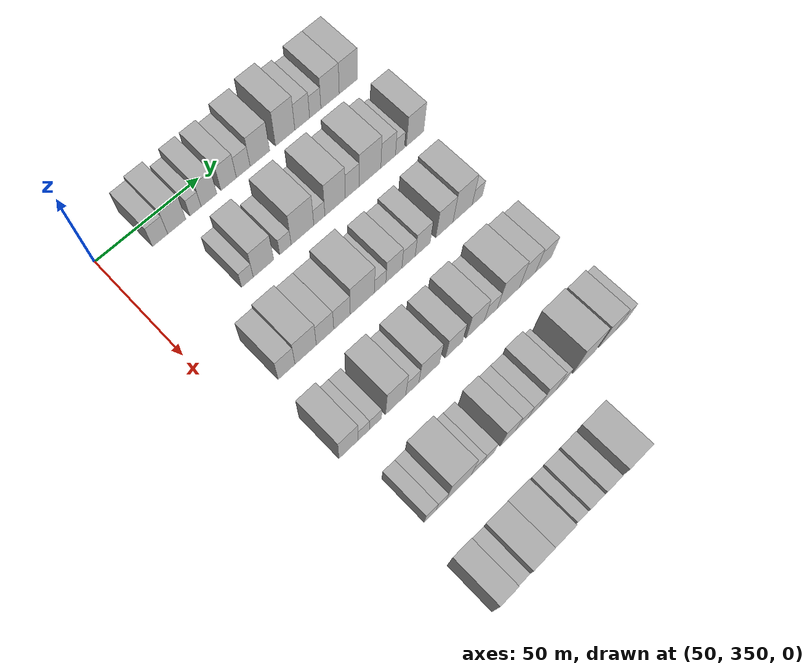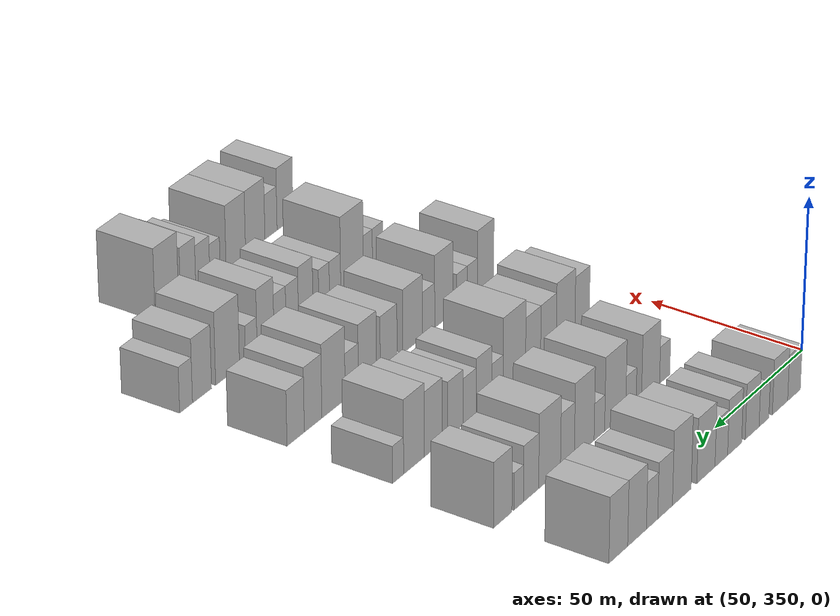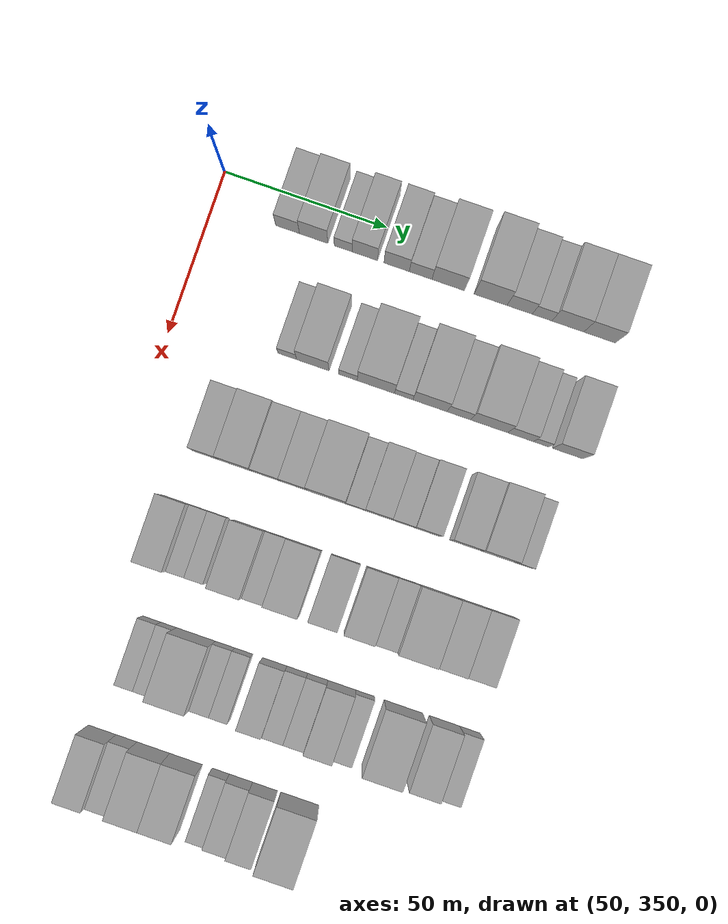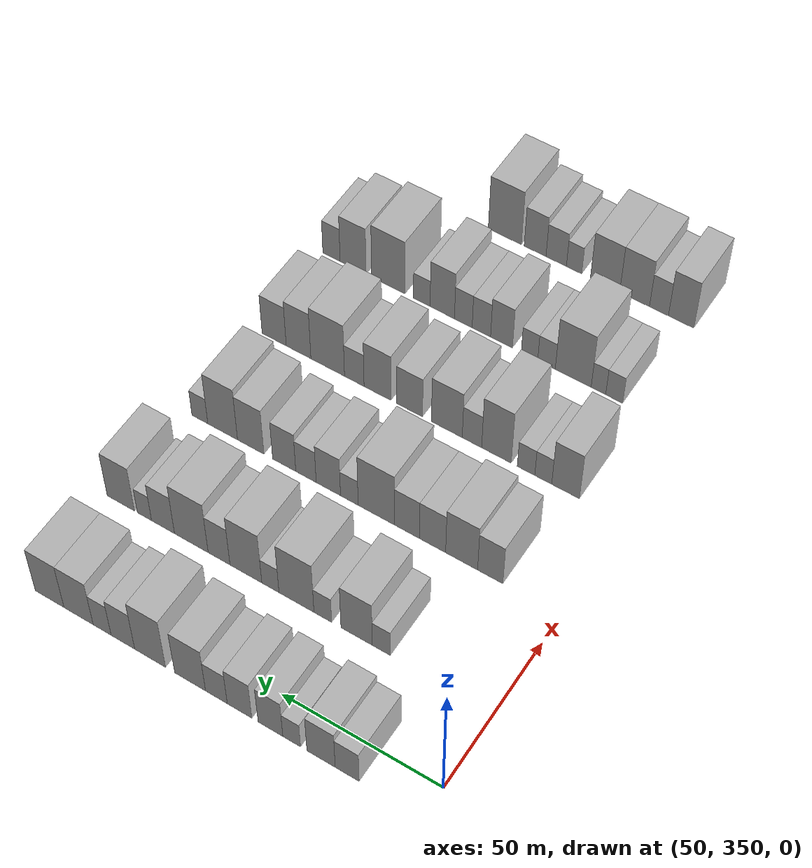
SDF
<sdf version="1.6">
 <world name="default">
  <model name="building_96">
   <static>1</static>
   <pose>50.0000 372.9082 0 0.000000 0.000000 0.000000</pose>
   <link name="link">
    <pose>0 0 7.50 0 0 0</pose>
    <collision name="collision"><geometry><box><size>20.0000 7.3380 15.0000</size></box></geometry></collision>
    <visual name="visual">
     <cast_shadows>0</cast_shadows>
     <geometry><box><size>20.0000 7.3380 15.0000</size></box></geometry>
     <material>
      <script>
       <uri>model://HANNAS_wall/materials/scripts</uri>
       <uri>model://HANNAS_wall/materials/textures</uri>
       <name>vrc/HANNAS_wall</name>
      </script>
     </material>
    </visual>
   </link>
  </model>
  <model name="building_97">
   <static>1</static>
   <pose>50.0000 380.9522 0 0.000000 0.000000 0.000000</pose>
   <link name="link">
    <pose>0 0 9.00 0 0 0</pose>
    <collision name="collision"><geometry><box><size>20.0000 8.7500 18.0000</size></box></geometry></collision>
    <visual name="visual">
     <cast_shadows>0</cast_shadows>
     <geometry><box><size>20.0000 8.7500 18.0000</size></box></geometry>
     <material>
      <script>
       <uri>model://HANNAS_wall/materials/scripts</uri>
       <uri>model://HANNAS_wall/materials/textures</uri>
       <name>vrc/HANNAS_wall</name>
      </script>
     </material>
    </visual>
   </link>
  </model>
  <model name="building_98">
   <static>1</static>
   <pose>50.0000 390.0911 0 0.000000 0.000000 0.000000</pose>
   <link name="link">
    <pose>0 0 6.00 0 0 0</pose>
    <collision name="collision"><geometry><box><size>20.0000 5.5277 12.0000</size></box></geometry></collision>
    <visual name="visual">
     <cast_shadows>0</cast_shadows>
     <geometry><box><size>20.0000 5.5277 12.0000</size></box></geometry>
     <material>
      <script>
       <uri>model://HANNAS_wall/materials/scripts</uri>
       <uri>model://HANNAS_wall/materials/textures</uri>
       <name>vrc/HANNAS_wall</name>
      </script>
     </material>
    </visual>
   </link>
  </model>
  <model name="building_99">
   <static>1</static>
   <pose>50.0000 396.7449 0 0.000000 0.000000 0.000000</pose>
   <link name="link">
    <pose>0 0 9.00 0 0 0</pose>
    <collision name="collision"><geometry><box><size>20.0000 7.7799 18.0000</size></box></geometry></collision>
    <visual name="visual">
     <cast_shadows>0</cast_shadows>
     <geometry><box><size>20.0000 7.7799 18.0000</size></box></geometry>
     <material>
      <script>
       <uri>model://HANNAS_wall/materials/scripts</uri>
       <uri>model://HANNAS_wall/materials/textures</uri>
       <name>vrc/HANNAS_wall</name>
      </script>
     </material>
    </visual>
   </link>
  </model>
  <model name="building_100">
   <static>1</static>
   <pose>50.0000 406.5369 0 0.000000 0.000000 0.000000</pose>
   <link name="link">
    <pose>0 0 9.00 0 0 0</pose>
    <collision name="collision"><geometry><box><size>20.0000 7.8041 18.0000</size></box></geometry></collision>
    <visual name="visual">
     <cast_shadows>0</cast_shadows>
     <geometry><box><size>20.0000 7.8041 18.0000</size></box></geometry>
     <material>
      <script>
       <uri>model://HANNAS_wall/materials/scripts</uri>
       <uri>model://HANNAS_wall/materials/textures</uri>
       <name>vrc/HANNAS_wall</name>
      </script>
     </material>
    </visual>
   </link>
  </model>
  <model name="building_101">
   <static>1</static>
   <pose>50.0000 413.9304 0 0.000000 0.000000 0.000000</pose>
   <link name="link">
    <pose>0 0 7.50 0 0 0</pose>
    <collision name="collision"><geometry><box><size>20.0000 6.9829 15.0000</size></box></geometry></collision>
    <visual name="visual">
     <cast_shadows>0</cast_shadows>
     <geometry><box><size>20.0000 6.9829 15.0000</size></box></geometry>
     <material>
      <script>
       <uri>model://HANNAS_wall/materials/scripts</uri>
       <uri>model://HANNAS_wall/materials/textures</uri>
       <name>vrc/HANNAS_wall</name>
      </script>
     </material>
    </visual>
   </link>
  </model>
  <model name="building_102">
   <static>1</static>
   <pose>50.0000 422.4146 0 0.000000 0.000000 0.000000</pose>
   <link name="link">
    <pose>0 0 10.50 0 0 0</pose>
    <collision name="collision"><geometry><box><size>20.0000 9.9854 21.0000</size></box></geometry></collision>
    <visual name="visual">
     <cast_shadows>0</cast_shadows>
     <geometry><box><size>20.0000 9.9854 21.0000</size></box></geometry>
     <material>
      <script>
       <uri>model://HANNAS_wall/materials/scripts</uri>
       <uri>model://HANNAS_wall/materials/textures</uri>
       <name>vrc/HANNAS_wall</name>
      </script>
     </material>
    </visual>
   </link>
  </model>
  <model name="building_103">
   <static>1</static>
   <pose>50.0000 435.4691 0 0.000000 0.000000 0.000000</pose>
   <link name="link">
    <pose>0 0 12.00 0 0 0</pose>
    <collision name="collision"><geometry><box><size>20.0000 10.1235 24.0000</size></box></geometry></collision>
    <visual name="visual">
     <cast_shadows>0</cast_shadows>
     <geometry><box><size>20.0000 10.1235 24.0000</size></box></geometry>
     <material>
      <script>
       <uri>model://HANNAS_wall/materials/scripts</uri>
       <uri>model://HANNAS_wall/materials/textures</uri>
       <name>vrc/HANNAS_wall</name>
      </script>
     </material>
    </visual>
   </link>
  </model>
  <model name="building_104">
   <static>1</static>
   <pose>50.0000 444.4349 0 0.000000 0.000000 0.000000</pose>
   <link name="link">
    <pose>0 0 9.00 0 0 0</pose>
    <collision name="collision"><geometry><box><size>20.0000 7.8082 18.0000</size></box></geometry></collision>
    <visual name="visual">
     <cast_shadows>0</cast_shadows>
     <geometry><box><size>20.0000 7.8082 18.0000</size></box></geometry>
     <material>
      <script>
       <uri>model://HANNAS_wall/materials/scripts</uri>
       <uri>model://HANNAS_wall/materials/textures</uri>
       <name>vrc/HANNAS_wall</name>
      </script>
     </material>
    </visual>
   </link>
  </model>
  <model name="building_105">
   <static>1</static>
   <pose>50.0000 451.3470 0 0.000000 0.000000 0.000000</pose>
   <link name="link">
    <pose>0 0 7.50 0 0 0</pose>
    <collision name="collision"><geometry><box><size>20.0000 6.0160 15.0000</size></box></geometry></collision>
    <visual name="visual">
     <cast_shadows>0</cast_shadows>
     <geometry><box><size>20.0000 6.0160 15.0000</size></box></geometry>
     <material>
      <script>
       <uri>model://HANNAS_wall/materials/scripts</uri>
       <uri>model://HANNAS_wall/materials/textures</uri>
       <name>vrc/HANNAS_wall</name>
      </script>
     </material>
    </visual>
   </link>
  </model>
  <model name="building_106">
   <static>1</static>
   <pose>50.0000 459.2782 0 0.000000 0.000000 0.000000</pose>
   <link name="link">
    <pose>0 0 10.50 0 0 0</pose>
    <collision name="collision"><geometry><box><size>20.0000 9.8463 21.0000</size></box></geometry></collision>
    <visual name="visual">
     <cast_shadows>0</cast_shadows>
     <geometry><box><size>20.0000 9.8463 21.0000</size></box></geometry>
     <material>
      <script>
       <uri>model://HANNAS_wall/materials/scripts</uri>
       <uri>model://HANNAS_wall/materials/textures</uri>
       <name>vrc/HANNAS_wall</name>
      </script>
     </material>
    </visual>
   </link>
  </model>
  <model name="building_107">
   <static>1</static>
   <pose>50.0000 469.0828 0 0.000000 0.000000 0.000000</pose>
   <link name="link">
    <pose>0 0 10.50 0 0 0</pose>
    <collision name="collision"><geometry><box><size>20.0000 9.7630 21.0000</size></box></geometry></collision>
    <visual name="visual">
     <cast_shadows>0</cast_shadows>
     <geometry><box><size>20.0000 9.7630 21.0000</size></box></geometry>
     <material>
      <script>
       <uri>model://HANNAS_wall/materials/scripts</uri>
       <uri>model://HANNAS_wall/materials/textures</uri>
       <name>vrc/HANNAS_wall</name>
      </script>
     </material>
    </visual>
   </link>
  </model>
  <model name="building_221">
   <static>1</static>
   <pose>85.0000 385.0509 0 0.000000 0.000000 0.000000</pose>
   <link name="link">
    <pose>0 0 6.00 0 0 0</pose>
    <collision name="collision"><geometry><box><size>20.0000 5.7285 12.0000</size></box></geometry></collision>
    <visual name="visual">
     <cast_shadows>0</cast_shadows>
     <geometry><box><size>20.0000 5.7285 12.0000</size></box></geometry>
     <material>
      <script>
       <uri>model://HANNAS_wall/materials/scripts</uri>
       <uri>model://HANNAS_wall/materials/textures</uri>
       <name>vrc/HANNAS_wall</name>
      </script>
     </material>
    </visual>
   </link>
  </model>
  <model name="building_222">
   <static>1</static>
   <pose>85.0000 392.8998 0 0.000000 0.000000 0.000000</pose>
   <link name="link">
    <pose>0 0 10.50 0 0 0</pose>
    <collision name="collision"><geometry><box><size>20.0000 9.9693 21.0000</size></box></geometry></collision>
    <visual name="visual">
     <cast_shadows>0</cast_shadows>
     <geometry><box><size>20.0000 9.9693 21.0000</size></box></geometry>
     <material>
      <script>
       <uri>model://HANNAS_wall/materials/scripts</uri>
       <uri>model://HANNAS_wall/materials/textures</uri>
       <name>vrc/HANNAS_wall</name>
      </script>
     </material>
    </visual>
   </link>
  </model>
  <model name="building_223">
   <static>1</static>
   <pose>85.0000 403.7340 0 0.000000 0.000000 0.000000</pose>
   <link name="link">
    <pose>0 0 6.00 0 0 0</pose>
    <collision name="collision"><geometry><box><size>20.0000 5.6991 12.0000</size></box></geometry></collision>
    <visual name="visual">
     <cast_shadows>0</cast_shadows>
     <geometry><box><size>20.0000 5.6991 12.0000</size></box></geometry>
     <material>
      <script>
       <uri>model://HANNAS_wall/materials/scripts</uri>
       <uri>model://HANNAS_wall/materials/textures</uri>
       <name>vrc/HANNAS_wall</name>
      </script>
     </material>
    </visual>
   </link>
  </model>
  <model name="building_224">
   <static>1</static>
   <pose>85.0000 412.2880 0 0.000000 0.000000 0.000000</pose>
   <link name="link">
    <pose>0 0 12.00 0 0 0</pose>
    <collision name="collision"><geometry><box><size>20.0000 11.4088 24.0000</size></box></geometry></collision>
    <visual name="visual">
     <cast_shadows>0</cast_shadows>
     <geometry><box><size>20.0000 11.4088 24.0000</size></box></geometry>
     <material>
      <script>
       <uri>model://HANNAS_wall/materials/scripts</uri>
       <uri>model://HANNAS_wall/materials/textures</uri>
       <name>vrc/HANNAS_wall</name>
      </script>
     </material>
    </visual>
   </link>
  </model>
  <model name="building_225">
   <static>1</static>
   <pose>85.0000 420.8090 0 0.000000 0.000000 0.000000</pose>
   <link name="link">
    <pose>0 0 6.00 0 0 0</pose>
    <collision name="collision"><geometry><box><size>20.0000 5.6333 12.0000</size></box></geometry></collision>
    <visual name="visual">
     <cast_shadows>0</cast_shadows>
     <geometry><box><size>20.0000 5.6333 12.0000</size></box></geometry>
     <material>
      <script>
       <uri>model://HANNAS_wall/materials/scripts</uri>
       <uri>model://HANNAS_wall/materials/textures</uri>
       <name>vrc/HANNAS_wall</name>
      </script>
     </material>
    </visual>
   </link>
  </model>
  <model name="building_226">
   <static>1</static>
   <pose>85.0000 428.8938 0 0.000000 0.000000 0.000000</pose>
   <link name="link">
    <pose>0 0 12.00 0 0 0</pose>
    <collision name="collision"><geometry><box><size>20.0000 10.5362 24.0000</size></box></geometry></collision>
    <visual name="visual">
     <cast_shadows>0</cast_shadows>
     <geometry><box><size>20.0000 10.5362 24.0000</size></box></geometry>
     <material>
      <script>
       <uri>model://HANNAS_wall/materials/scripts</uri>
       <uri>model://HANNAS_wall/materials/textures</uri>
       <name>vrc/HANNAS_wall</name>
      </script>
     </material>
    </visual>
   </link>
  </model>
  <model name="building_227">
   <static>1</static>
   <pose>85.0000 437.8114 0 0.000000 0.000000 0.000000</pose>
   <link name="link">
    <pose>0 0 9.00 0 0 0</pose>
    <collision name="collision"><geometry><box><size>20.0000 7.2992 18.0000</size></box></geometry></collision>
    <visual name="visual">
     <cast_shadows>0</cast_shadows>
     <geometry><box><size>20.0000 7.2992 18.0000</size></box></geometry>
     <material>
      <script>
       <uri>model://HANNAS_wall/materials/scripts</uri>
       <uri>model://HANNAS_wall/materials/textures</uri>
       <name>vrc/HANNAS_wall</name>
      </script>
     </material>
    </visual>
   </link>
  </model>
  <model name="building_228">
   <static>1</static>
   <pose>85.0000 447.1534 0 0.000000 0.000000 0.000000</pose>
   <link name="link">
    <pose>0 0 12.00 0 0 0</pose>
    <collision name="collision"><geometry><box><size>20.0000 11.3847 24.0000</size></box></geometry></collision>
    <visual name="visual">
     <cast_shadows>0</cast_shadows>
     <geometry><box><size>20.0000 11.3847 24.0000</size></box></geometry>
     <material>
      <script>
       <uri>model://HANNAS_wall/materials/scripts</uri>
       <uri>model://HANNAS_wall/materials/textures</uri>
       <name>vrc/HANNAS_wall</name>
      </script>
     </material>
    </visual>
   </link>
  </model>
  <model name="building_229">
   <static>1</static>
   <pose>85.0000 456.7646 0 0.000000 0.000000 0.000000</pose>
   <link name="link">
    <pose>0 0 9.00 0 0 0</pose>
    <collision name="collision"><geometry><box><size>20.0000 7.8378 18.0000</size></box></geometry></collision>
    <visual name="visual">
     <cast_shadows>0</cast_shadows>
     <geometry><box><size>20.0000 7.8378 18.0000</size></box></geometry>
     <material>
      <script>
       <uri>model://HANNAS_wall/materials/scripts</uri>
       <uri>model://HANNAS_wall/materials/textures</uri>
       <name>vrc/HANNAS_wall</name>
      </script>
     </material>
    </visual>
   </link>
  </model>
  <model name="building_230">
   <static>1</static>
   <pose>85.0000 463.1246 0 0.000000 0.000000 0.000000</pose>
   <link name="link">
    <pose>0 0 6.00 0 0 0</pose>
    <collision name="collision"><geometry><box><size>20.0000 4.8823 12.0000</size></box></geometry></collision>
    <visual name="visual">
     <cast_shadows>0</cast_shadows>
     <geometry><box><size>20.0000 4.8823 12.0000</size></box></geometry>
     <material>
      <script>
       <uri>model://HANNAS_wall/materials/scripts</uri>
       <uri>model://HANNAS_wall/materials/textures</uri>
       <name>vrc/HANNAS_wall</name>
      </script>
     </material>
    </visual>
   </link>
  </model>
  <model name="building_231">
   <static>1</static>
   <pose>85.0000 471.2781 0 0.000000 0.000000 0.000000</pose>
   <link name="link">
    <pose>0 0 10.50 0 0 0</pose>
    <collision name="collision"><geometry><box><size>20.0000 9.4247 21.0000</size></box></geometry></collision>
    <visual name="visual">
     <cast_shadows>0</cast_shadows>
     <geometry><box><size>20.0000 9.4247 21.0000</size></box></geometry>
     <material>
      <script>
       <uri>model://HANNAS_wall/materials/scripts</uri>
       <uri>model://HANNAS_wall/materials/textures</uri>
       <name>vrc/HANNAS_wall</name>
      </script>
     </material>
    </visual>
   </link>
  </model>
  <model name="building_343">
   <static>1</static>
   <pose>120.0000 372.3522 0 0.000000 0.000000 0.000000</pose>
   <link name="link">
    <pose>0 0 9.00 0 0 0</pose>
    <collision name="collision"><geometry><box><size>20.0000 8.0290 18.0000</size></box></geometry></collision>
    <visual name="visual">
     <cast_shadows>0</cast_shadows>
     <geometry><box><size>20.0000 8.0290 18.0000</size></box></geometry>
     <material>
      <script>
       <uri>model://HANNAS_wall/materials/scripts</uri>
       <uri>model://HANNAS_wall/materials/textures</uri>
       <name>vrc/HANNAS_wall</name>
      </script>
     </material>
    </visual>
   </link>
  </model>
  <model name="building_344">
   <static>1</static>
   <pose>120.0000 381.4960 0 0.000000 0.000000 0.000000</pose>
   <link name="link">
    <pose>0 0 10.50 0 0 0</pose>
    <collision name="collision"><geometry><box><size>20.0000 10.2587 21.0000</size></box></geometry></collision>
    <visual name="visual">
     <cast_shadows>0</cast_shadows>
     <geometry><box><size>20.0000 10.2587 21.0000</size></box></geometry>
     <material>
      <script>
       <uri>model://HANNAS_wall/materials/scripts</uri>
       <uri>model://HANNAS_wall/materials/textures</uri>
       <name>vrc/HANNAS_wall</name>
      </script>
     </material>
    </visual>
   </link>
  </model>
  <model name="building_345">
   <static>1</static>
   <pose>120.0000 390.8699 0 0.000000 0.000000 0.000000</pose>
   <link name="link">
    <pose>0 0 9.00 0 0 0</pose>
    <collision name="collision"><geometry><box><size>20.0000 8.4892 18.0000</size></box></geometry></collision>
    <visual name="visual">
     <cast_shadows>0</cast_shadows>
     <geometry><box><size>20.0000 8.4892 18.0000</size></box></geometry>
     <material>
      <script>
       <uri>model://HANNAS_wall/materials/scripts</uri>
       <uri>model://HANNAS_wall/materials/textures</uri>
       <name>vrc/HANNAS_wall</name>
      </script>
     </material>
    </visual>
   </link>
  </model>
  <model name="building_346">
   <static>1</static>
   <pose>120.0000 399.1827 0 0.000000 0.000000 0.000000</pose>
   <link name="link">
    <pose>0 0 9.00 0 0 0</pose>
    <collision name="collision"><geometry><box><size>20.0000 8.1363 18.0000</size></box></geometry></collision>
    <visual name="visual">
     <cast_shadows>0</cast_shadows>
     <geometry><box><size>20.0000 8.1363 18.0000</size></box></geometry>
     <material>
      <script>
       <uri>model://HANNAS_wall/materials/scripts</uri>
       <uri>model://HANNAS_wall/materials/textures</uri>
       <name>vrc/HANNAS_wall</name>
      </script>
     </material>
    </visual>
   </link>
  </model>
  <model name="building_347">
   <static>1</static>
   <pose>120.0000 409.2458 0 0.000000 0.000000 0.000000</pose>
   <link name="link">
    <pose>0 0 12.00 0 0 0</pose>
    <collision name="collision"><geometry><box><size>20.0000 11.9900 24.0000</size></box></geometry></collision>
    <visual name="visual">
     <cast_shadows>0</cast_shadows>
     <geometry><box><size>20.0000 11.9900 24.0000</size></box></geometry>
     <material>
      <script>
       <uri>model://HANNAS_wall/materials/scripts</uri>
       <uri>model://HANNAS_wall/materials/textures</uri>
       <name>vrc/HANNAS_wall</name>
      </script>
     </material>
    </visual>
   </link>
  </model>
  <model name="building_348">
   <static>1</static>
   <pose>120.0000 418.1834 0 0.000000 0.000000 0.000000</pose>
   <link name="link">
    <pose>0 0 6.00 0 0 0</pose>
    <collision name="collision"><geometry><box><size>20.0000 5.8854 12.0000</size></box></geometry></collision>
    <visual name="visual">
     <cast_shadows>0</cast_shadows>
     <geometry><box><size>20.0000 5.8854 12.0000</size></box></geometry>
     <material>
      <script>
       <uri>model://HANNAS_wall/materials/scripts</uri>
       <uri>model://HANNAS_wall/materials/textures</uri>
       <name>vrc/HANNAS_wall</name>
      </script>
     </material>
    </visual>
   </link>
  </model>
  <model name="building_349">
   <static>1</static>
   <pose>120.0000 425.2033 0 0.000000 0.000000 0.000000</pose>
   <link name="link">
    <pose>0 0 9.00 0 0 0</pose>
    <collision name="collision"><geometry><box><size>20.0000 8.1543 18.0000</size></box></geometry></collision>
    <visual name="visual">
     <cast_shadows>0</cast_shadows>
     <geometry><box><size>20.0000 8.1543 18.0000</size></box></geometry>
     <material>
      <script>
       <uri>model://HANNAS_wall/materials/scripts</uri>
       <uri>model://HANNAS_wall/materials/textures</uri>
       <name>vrc/HANNAS_wall</name>
      </script>
     </material>
    </visual>
   </link>
  </model>
  <model name="building_350">
   <static>1</static>
   <pose>120.0000 432.7325 0 0.000000 0.000000 0.000000</pose>
   <link name="link">
    <pose>0 0 7.50 0 0 0</pose>
    <collision name="collision"><geometry><box><size>20.0000 6.9041 15.0000</size></box></geometry></collision>
    <visual name="visual">
     <cast_shadows>0</cast_shadows>
     <geometry><box><size>20.0000 6.9041 15.0000</size></box></geometry>
     <material>
      <script>
       <uri>model://HANNAS_wall/materials/scripts</uri>
       <uri>model://HANNAS_wall/materials/textures</uri>
       <name>vrc/HANNAS_wall</name>
      </script>
     </material>
    </visual>
   </link>
  </model>
  <model name="building_351">
   <static>1</static>
   <pose>120.0000 440.1216 0 0.000000 0.000000 0.000000</pose>
   <link name="link">
    <pose>0 0 9.00 0 0 0</pose>
    <collision name="collision"><geometry><box><size>20.0000 7.8741 18.0000</size></box></geometry></collision>
    <visual name="visual">
     <cast_shadows>0</cast_shadows>
     <geometry><box><size>20.0000 7.8741 18.0000</size></box></geometry>
     <material>
      <script>
       <uri>model://HANNAS_wall/materials/scripts</uri>
       <uri>model://HANNAS_wall/materials/textures</uri>
       <name>vrc/HANNAS_wall</name>
      </script>
     </material>
    </visual>
   </link>
  </model>
  <model name="building_352">
   <static>1</static>
   <pose>120.0000 451.6036 0 0.000000 0.000000 0.000000</pose>
   <link name="link">
    <pose>0 0 10.50 0 0 0</pose>
    <collision name="collision"><geometry><box><size>20.0000 9.0899 21.0000</size></box></geometry></collision>
    <visual name="visual">
     <cast_shadows>0</cast_shadows>
     <geometry><box><size>20.0000 9.0899 21.0000</size></box></geometry>
     <material>
      <script>
       <uri>model://HANNAS_wall/materials/scripts</uri>
       <uri>model://HANNAS_wall/materials/textures</uri>
       <name>vrc/HANNAS_wall</name>
      </script>
     </material>
    </visual>
   </link>
  </model>
  <model name="building_353">
   <static>1</static>
   <pose>120.0000 461.3247 0 0.000000 0.000000 0.000000</pose>
   <link name="link">
    <pose>0 0 12.00 0 0 0</pose>
    <collision name="collision"><geometry><box><size>20.0000 10.3523 24.0000</size></box></geometry></collision>
    <visual name="visual">
     <cast_shadows>0</cast_shadows>
     <geometry><box><size>20.0000 10.3523 24.0000</size></box></geometry>
     <material>
      <script>
       <uri>model://HANNAS_wall/materials/scripts</uri>
       <uri>model://HANNAS_wall/materials/textures</uri>
       <name>vrc/HANNAS_wall</name>
      </script>
     </material>
    </visual>
   </link>
  </model>
  <model name="building_354">
   <static>1</static>
   <pose>120.0000 469.2791 0 0.000000 0.000000 0.000000</pose>
   <link name="link">
    <pose>0 0 6.00 0 0 0</pose>
    <collision name="collision"><geometry><box><size>20.0000 5.5566 12.0000</size></box></geometry></collision>
    <visual name="visual">
     <cast_shadows>0</cast_shadows>
     <geometry><box><size>20.0000 5.5566 12.0000</size></box></geometry>
     <material>
      <script>
       <uri>model://HANNAS_wall/materials/scripts</uri>
       <uri>model://HANNAS_wall/materials/textures</uri>
       <name>vrc/HANNAS_wall</name>
      </script>
     </material>
    </visual>
   </link>
  </model>
  <model name="building_465">
   <static>1</static>
   <pose>155.0000 368.9170 0 0.000000 0.000000 0.000000</pose>
   <link name="link">
    <pose>0 0 10.50 0 0 0</pose>
    <collision name="collision"><geometry><box><size>20.0000 8.9473 21.0000</size></box></geometry></collision>
    <visual name="visual">
     <cast_shadows>0</cast_shadows>
     <geometry><box><size>20.0000 8.9473 21.0000</size></box></geometry>
     <material>
      <script>
       <uri>model://HANNAS_wall/materials/scripts</uri>
       <uri>model://HANNAS_wall/materials/textures</uri>
       <name>vrc/HANNAS_wall</name>
      </script>
     </material>
    </visual>
   </link>
  </model>
  <model name="building_466">
   <static>1</static>
   <pose>155.0000 376.1301 0 0.000000 0.000000 0.000000</pose>
   <link name="link">
    <pose>0 0 6.00 0 0 0</pose>
    <collision name="collision"><geometry><box><size>20.0000 5.4789 12.0000</size></box></geometry></collision>
    <visual name="visual">
     <cast_shadows>0</cast_shadows>
     <geometry><box><size>20.0000 5.4789 12.0000</size></box></geometry>
     <material>
      <script>
       <uri>model://HANNAS_wall/materials/scripts</uri>
       <uri>model://HANNAS_wall/materials/textures</uri>
       <name>vrc/HANNAS_wall</name>
      </script>
     </material>
    </visual>
   </link>
  </model>
  <model name="building_467">
   <static>1</static>
   <pose>155.0000 381.7241 0 0.000000 0.000000 0.000000</pose>
   <link name="link">
    <pose>0 0 6.00 0 0 0</pose>
    <collision name="collision"><geometry><box><size>20.0000 5.7091 12.0000</size></box></geometry></collision>
    <visual name="visual">
     <cast_shadows>0</cast_shadows>
     <geometry><box><size>20.0000 5.7091 12.0000</size></box></geometry>
     <material>
      <script>
       <uri>model://HANNAS_wall/materials/scripts</uri>
       <uri>model://HANNAS_wall/materials/textures</uri>
       <name>vrc/HANNAS_wall</name>
      </script>
     </material>
    </visual>
   </link>
  </model>
  <model name="building_468">
   <static>1</static>
   <pose>155.0000 391.4605 0 0.000000 0.000000 0.000000</pose>
   <link name="link">
    <pose>0 0 12.00 0 0 0</pose>
    <collision name="collision"><geometry><box><size>20.0000 9.7637 24.0000</size></box></geometry></collision>
    <visual name="visual">
     <cast_shadows>0</cast_shadows>
     <geometry><box><size>20.0000 9.7637 24.0000</size></box></geometry>
     <material>
      <script>
       <uri>model://HANNAS_wall/materials/scripts</uri>
       <uri>model://HANNAS_wall/materials/textures</uri>
       <name>vrc/HANNAS_wall</name>
      </script>
     </material>
    </visual>
   </link>
  </model>
  <model name="building_469">
   <static>1</static>
   <pose>155.0000 399.5577 0 0.000000 0.000000 0.000000</pose>
   <link name="link">
    <pose>0 0 7.50 0 0 0</pose>
    <collision name="collision"><geometry><box><size>20.0000 6.4308 15.0000</size></box></geometry></collision>
    <visual name="visual">
     <cast_shadows>0</cast_shadows>
     <geometry><box><size>20.0000 6.4308 15.0000</size></box></geometry>
     <material>
      <script>
       <uri>model://HANNAS_wall/materials/scripts</uri>
       <uri>model://HANNAS_wall/materials/textures</uri>
       <name>vrc/HANNAS_wall</name>
      </script>
     </material>
    </visual>
   </link>
  </model>
  <model name="building_470">
   <static>1</static>
   <pose>155.0000 407.9489 0 0.000000 0.000000 0.000000</pose>
   <link name="link">
    <pose>0 0 10.50 0 0 0</pose>
    <collision name="collision"><geometry><box><size>20.0000 10.3515 21.0000</size></box></geometry></collision>
    <visual name="visual">
     <cast_shadows>0</cast_shadows>
     <geometry><box><size>20.0000 10.3515 21.0000</size></box></geometry>
     <material>
      <script>
       <uri>model://HANNAS_wall/materials/scripts</uri>
       <uri>model://HANNAS_wall/materials/textures</uri>
       <name>vrc/HANNAS_wall</name>
      </script>
     </material>
    </visual>
   </link>
  </model>
  <model name="building_471">
   <static>1</static>
   <pose>155.0000 420.4796 0 0.000000 0.000000 0.000000</pose>
   <link name="link">
    <pose>0 0 9.00 0 0 0</pose>
    <collision name="collision"><geometry><box><size>20.0000 8.7100 18.0000</size></box></geometry></collision>
    <visual name="visual">
     <cast_shadows>0</cast_shadows>
     <geometry><box><size>20.0000 8.7100 18.0000</size></box></geometry>
     <material>
      <script>
       <uri>model://HANNAS_wall/materials/scripts</uri>
       <uri>model://HANNAS_wall/materials/textures</uri>
       <name>vrc/HANNAS_wall</name>
      </script>
     </material>
    </visual>
   </link>
  </model>
  <model name="building_472">
   <static>1</static>
   <pose>155.0000 431.4518 0 0.000000 0.000000 0.000000</pose>
   <link name="link">
    <pose>0 0 10.50 0 0 0</pose>
    <collision name="collision"><geometry><box><size>20.0000 9.2345 21.0000</size></box></geometry></collision>
    <visual name="visual">
     <cast_shadows>0</cast_shadows>
     <geometry><box><size>20.0000 9.2345 21.0000</size></box></geometry>
     <material>
      <script>
       <uri>model://HANNAS_wall/materials/scripts</uri>
       <uri>model://HANNAS_wall/materials/textures</uri>
       <name>vrc/HANNAS_wall</name>
      </script>
     </material>
    </visual>
   </link>
  </model>
  <model name="building_473">
   <static>1</static>
   <pose>155.0000 439.4439 0 0.000000 0.000000 0.000000</pose>
   <link name="link">
    <pose>0 0 7.50 0 0 0</pose>
    <collision name="collision"><geometry><box><size>20.0000 6.7495 15.0000</size></box></geometry></collision>
    <visual name="visual">
     <cast_shadows>0</cast_shadows>
     <geometry><box><size>20.0000 6.7495 15.0000</size></box></geometry>
     <material>
      <script>
       <uri>model://HANNAS_wall/materials/scripts</uri>
       <uri>model://HANNAS_wall/materials/textures</uri>
       <name>vrc/HANNAS_wall</name>
      </script>
     </material>
    </visual>
   </link>
  </model>
  <model name="building_474">
   <static>1</static>
   <pose>155.0000 448.6864 0 0.000000 0.000000 0.000000</pose>
   <link name="link">
    <pose>0 0 12.00 0 0 0</pose>
    <collision name="collision"><geometry><box><size>20.0000 11.7356 24.0000</size></box></geometry></collision>
    <visual name="visual">
     <cast_shadows>0</cast_shadows>
     <geometry><box><size>20.0000 11.7356 24.0000</size></box></geometry>
     <material>
      <script>
       <uri>model://HANNAS_wall/materials/scripts</uri>
       <uri>model://HANNAS_wall/materials/textures</uri>
       <name>vrc/HANNAS_wall</name>
      </script>
     </material>
    </visual>
   </link>
  </model>
  <model name="building_475">
   <static>1</static>
   <pose>155.0000 458.9106 0 0.000000 0.000000 0.000000</pose>
   <link name="link">
    <pose>0 0 10.50 0 0 0</pose>
    <collision name="collision"><geometry><box><size>20.0000 8.7128 21.0000</size></box></geometry></collision>
    <visual name="visual">
     <cast_shadows>0</cast_shadows>
     <geometry><box><size>20.0000 8.7128 21.0000</size></box></geometry>
     <material>
      <script>
       <uri>model://HANNAS_wall/materials/scripts</uri>
       <uri>model://HANNAS_wall/materials/textures</uri>
       <name>vrc/HANNAS_wall</name>
      </script>
     </material>
    </visual>
   </link>
  </model>
  <model name="building_476">
   <static>1</static>
   <pose>155.0000 467.5434 0 0.000000 0.000000 0.000000</pose>
   <link name="link">
    <pose>0 0 9.00 0 0 0</pose>
    <collision name="collision"><geometry><box><size>20.0000 8.5527 18.0000</size></box></geometry></collision>
    <visual name="visual">
     <cast_shadows>0</cast_shadows>
     <geometry><box><size>20.0000 8.5527 18.0000</size></box></geometry>
     <material>
      <script>
       <uri>model://HANNAS_wall/materials/scripts</uri>
       <uri>model://HANNAS_wall/materials/textures</uri>
       <name>vrc/HANNAS_wall</name>
      </script>
     </material>
    </visual>
   </link>
  </model>
  <model name="building_594">
   <static>1</static>
   <pose>190.0000 372.9548 0 0.000000 0.000000 0.000000</pose>
   <link name="link">
    <pose>0 0 6.00 0 0 0</pose>
    <collision name="collision"><geometry><box><size>20.0000 5.5899 12.0000</size></box></geometry></collision>
    <visual name="visual">
     <cast_shadows>0</cast_shadows>
     <geometry><box><size>20.0000 5.5899 12.0000</size></box></geometry>
     <material>
      <script>
       <uri>model://HANNAS_wall/materials/scripts</uri>
       <uri>model://HANNAS_wall/materials/textures</uri>
       <name>vrc/HANNAS_wall</name>
      </script>
     </material>
    </visual>
   </link>
  </model>
  <model name="building_595">
   <static>1</static>
   <pose>190.0000 378.1574 0 0.000000 0.000000 0.000000</pose>
   <link name="link">
    <pose>0 0 6.00 0 0 0</pose>
    <collision name="collision"><geometry><box><size>20.0000 4.8153 12.0000</size></box></geometry></collision>
    <visual name="visual">
     <cast_shadows>0</cast_shadows>
     <geometry><box><size>20.0000 4.8153 12.0000</size></box></geometry>
     <material>
      <script>
       <uri>model://HANNAS_wall/materials/scripts</uri>
       <uri>model://HANNAS_wall/materials/textures</uri>
       <name>vrc/HANNAS_wall</name>
      </script>
     </material>
    </visual>
   </link>
  </model>
  <model name="building_596">
   <static>1</static>
   <pose>190.0000 386.5609 0 0.000000 0.000000 0.000000</pose>
   <link name="link">
    <pose>0 0 12.00 0 0 0</pose>
    <collision name="collision"><geometry><box><size>20.0000 11.9917 24.0000</size></box></geometry></collision>
    <visual name="visual">
     <cast_shadows>0</cast_shadows>
     <geometry><box><size>20.0000 11.9917 24.0000</size></box></geometry>
     <material>
      <script>
       <uri>model://HANNAS_wall/materials/scripts</uri>
       <uri>model://HANNAS_wall/materials/textures</uri>
       <name>vrc/HANNAS_wall</name>
      </script>
     </material>
    </visual>
   </link>
  </model>
  <model name="building_597">
   <static>1</static>
   <pose>190.0000 395.5101 0 0.000000 0.000000 0.000000</pose>
   <link name="link">
    <pose>0 0 6.00 0 0 0</pose>
    <collision name="collision"><geometry><box><size>20.0000 5.9066 12.0000</size></box></geometry></collision>
    <visual name="visual">
     <cast_shadows>0</cast_shadows>
     <geometry><box><size>20.0000 5.9066 12.0000</size></box></geometry>
     <material>
      <script>
       <uri>model://HANNAS_wall/materials/scripts</uri>
       <uri>model://HANNAS_wall/materials/textures</uri>
       <name>vrc/HANNAS_wall</name>
      </script>
     </material>
    </visual>
   </link>
  </model>
  <model name="building_598">
   <static>1</static>
   <pose>190.0000 401.2446 0 0.000000 0.000000 0.000000</pose>
   <link name="link">
    <pose>0 0 6.00 0 0 0</pose>
    <collision name="collision"><geometry><box><size>20.0000 5.5624 12.0000</size></box></geometry></collision>
    <visual name="visual">
     <cast_shadows>0</cast_shadows>
     <geometry><box><size>20.0000 5.5624 12.0000</size></box></geometry>
     <material>
      <script>
       <uri>model://HANNAS_wall/materials/scripts</uri>
       <uri>model://HANNAS_wall/materials/textures</uri>
       <name>vrc/HANNAS_wall</name>
      </script>
     </material>
    </visual>
   </link>
  </model>
  <model name="building_599">
   <static>1</static>
   <pose>190.0000 410.7658 0 0.000000 0.000000 0.000000</pose>
   <link name="link">
    <pose>0 0 9.00 0 0 0</pose>
    <collision name="collision"><geometry><box><size>20.0000 7.4801 18.0000</size></box></geometry></collision>
    <visual name="visual">
     <cast_shadows>0</cast_shadows>
     <geometry><box><size>20.0000 7.4801 18.0000</size></box></geometry>
     <material>
      <script>
       <uri>model://HANNAS_wall/materials/scripts</uri>
       <uri>model://HANNAS_wall/materials/textures</uri>
       <name>vrc/HANNAS_wall</name>
      </script>
     </material>
    </visual>
   </link>
  </model>
  <model name="building_600">
   <static>1</static>
   <pose>190.0000 417.6758 0 0.000000 0.000000 0.000000</pose>
   <link name="link">
    <pose>0 0 7.50 0 0 0</pose>
    <collision name="collision"><geometry><box><size>20.0000 6.3399 15.0000</size></box></geometry></collision>
    <visual name="visual">
     <cast_shadows>0</cast_shadows>
     <geometry><box><size>20.0000 6.3399 15.0000</size></box></geometry>
     <material>
      <script>
       <uri>model://HANNAS_wall/materials/scripts</uri>
       <uri>model://HANNAS_wall/materials/textures</uri>
       <name>vrc/HANNAS_wall</name>
      </script>
     </material>
    </visual>
   </link>
  </model>
  <model name="building_601">
   <static>1</static>
   <pose>190.0000 423.9115 0 0.000000 0.000000 0.000000</pose>
   <link name="link">
    <pose>0 0 7.50 0 0 0</pose>
    <collision name="collision"><geometry><box><size>20.0000 6.1315 15.0000</size></box></geometry></collision>
    <visual name="visual">
     <cast_shadows>0</cast_shadows>
     <geometry><box><size>20.0000 6.1315 15.0000</size></box></geometry>
     <material>
      <script>
       <uri>model://HANNAS_wall/materials/scripts</uri>
       <uri>model://HANNAS_wall/materials/textures</uri>
       <name>vrc/HANNAS_wall</name>
      </script>
     </material>
    </visual>
   </link>
  </model>
  <model name="building_602">
   <static>1</static>
   <pose>190.0000 431.2294 0 0.000000 0.000000 0.000000</pose>
   <link name="link">
    <pose>0 0 10.50 0 0 0</pose>
    <collision name="collision"><geometry><box><size>20.0000 8.5043 21.0000</size></box></geometry></collision>
    <visual name="visual">
     <cast_shadows>0</cast_shadows>
     <geometry><box><size>20.0000 8.5043 21.0000</size></box></geometry>
     <material>
      <script>
       <uri>model://HANNAS_wall/materials/scripts</uri>
       <uri>model://HANNAS_wall/materials/textures</uri>
       <name>vrc/HANNAS_wall</name>
      </script>
     </material>
    </visual>
   </link>
  </model>
  <model name="building_603">
   <static>1</static>
   <pose>190.0000 438.3949 0 0.000000 0.000000 0.000000</pose>
   <link name="link">
    <pose>0 0 6.00 0 0 0</pose>
    <collision name="collision"><geometry><box><size>20.0000 5.8267 12.0000</size></box></geometry></collision>
    <visual name="visual">
     <cast_shadows>0</cast_shadows>
     <geometry><box><size>20.0000 5.8267 12.0000</size></box></geometry>
     <material>
      <script>
       <uri>model://HANNAS_wall/materials/scripts</uri>
       <uri>model://HANNAS_wall/materials/textures</uri>
       <name>vrc/HANNAS_wall</name>
      </script>
     </material>
    </visual>
   </link>
  </model>
  <model name="building_604">
   <static>1</static>
   <pose>190.0000 450.2171 0 0.000000 0.000000 0.000000</pose>
   <link name="link">
    <pose>0 0 12.00 0 0 0</pose>
    <collision name="collision"><geometry><box><size>20.0000 11.8179 24.0000</size></box></geometry></collision>
    <visual name="visual">
     <cast_shadows>0</cast_shadows>
     <geometry><box><size>20.0000 11.8179 24.0000</size></box></geometry>
     <material>
      <script>
       <uri>model://HANNAS_wall/materials/scripts</uri>
       <uri>model://HANNAS_wall/materials/textures</uri>
       <name>vrc/HANNAS_wall</name>
      </script>
     </material>
    </visual>
   </link>
  </model>
  <model name="building_605">
   <static>1</static>
   <pose>190.0000 462.7870 0 0.000000 0.000000 0.000000</pose>
   <link name="link">
    <pose>0 0 10.50 0 0 0</pose>
    <collision name="collision"><geometry><box><size>20.0000 9.3218 21.0000</size></box></geometry></collision>
    <visual name="visual">
     <cast_shadows>0</cast_shadows>
     <geometry><box><size>20.0000 9.3218 21.0000</size></box></geometry>
     <material>
      <script>
       <uri>model://HANNAS_wall/materials/scripts</uri>
       <uri>model://HANNAS_wall/materials/textures</uri>
       <name>vrc/HANNAS_wall</name>
      </script>
     </material>
    </visual>
   </link>
  </model>
  <model name="building_606">
   <static>1</static>
   <pose>190.0000 470.5636 0 0.000000 0.000000 0.000000</pose>
   <link name="link">
    <pose>0 0 7.50 0 0 0</pose>
    <collision name="collision"><geometry><box><size>20.0000 6.2315 15.0000</size></box></geometry></collision>
    <visual name="visual">
     <cast_shadows>0</cast_shadows>
     <geometry><box><size>20.0000 6.2315 15.0000</size></box></geometry>
     <material>
      <script>
       <uri>model://HANNAS_wall/materials/scripts</uri>
       <uri>model://HANNAS_wall/materials/textures</uri>
       <name>vrc/HANNAS_wall</name>
      </script>
     </material>
    </visual>
   </link>
  </model>
  <model name="building_725">
   <static>1</static>
   <pose>225.0000 369.9409 0 0.000000 0.000000 0.000000</pose>
   <link name="link">
    <pose>0 0 10.50 0 0 0</pose>
    <collision name="collision"><geometry><box><size>20.0000 8.5025 21.0000</size></box></geometry></collision>
    <visual name="visual">
     <cast_shadows>0</cast_shadows>
     <geometry><box><size>20.0000 8.5025 21.0000</size></box></geometry>
     <material>
      <script>
       <uri>model://HANNAS_wall/materials/scripts</uri>
       <uri>model://HANNAS_wall/materials/textures</uri>
       <name>vrc/HANNAS_wall</name>
      </script>
     </material>
    </visual>
   </link>
  </model>
  <model name="building_726">
   <static>1</static>
   <pose>225.0000 377.3790 0 0.000000 0.000000 0.000000</pose>
   <link name="link">
    <pose>0 0 7.50 0 0 0</pose>
    <collision name="collision"><geometry><box><size>20.0000 6.3736 15.0000</size></box></geometry></collision>
    <visual name="visual">
     <cast_shadows>0</cast_shadows>
     <geometry><box><size>20.0000 6.3736 15.0000</size></box></geometry>
     <material>
      <script>
       <uri>model://HANNAS_wall/materials/scripts</uri>
       <uri>model://HANNAS_wall/materials/textures</uri>
       <name>vrc/HANNAS_wall</name>
      </script>
     </material>
    </visual>
   </link>
  </model>
  <model name="building_727">
   <static>1</static>
   <pose>225.0000 385.6181 0 0.000000 0.000000 0.000000</pose>
   <link name="link">
    <pose>0 0 10.50 0 0 0</pose>
    <collision name="collision"><geometry><box><size>20.0000 10.1047 21.0000</size></box></geometry></collision>
    <visual name="visual">
     <cast_shadows>0</cast_shadows>
     <geometry><box><size>20.0000 10.1047 21.0000</size></box></geometry>
     <material>
      <script>
       <uri>model://HANNAS_wall/materials/scripts</uri>
       <uri>model://HANNAS_wall/materials/textures</uri>
       <name>vrc/HANNAS_wall</name>
      </script>
     </material>
    </visual>
   </link>
  </model>
  <model name="building_728">
   <static>1</static>
   <pose>225.0000 395.6833 0 0.000000 0.000000 0.000000</pose>
   <link name="link">
    <pose>0 0 10.50 0 0 0</pose>
    <collision name="collision"><geometry><box><size>20.0000 10.0257 21.0000</size></box></geometry></collision>
    <visual name="visual">
     <cast_shadows>0</cast_shadows>
     <geometry><box><size>20.0000 10.0257 21.0000</size></box></geometry>
     <material>
      <script>
       <uri>model://HANNAS_wall/materials/scripts</uri>
       <uri>model://HANNAS_wall/materials/textures</uri>
       <name>vrc/HANNAS_wall</name>
      </script>
     </material>
    </visual>
   </link>
  </model>
  <model name="building_729">
   <static>1</static>
   <pose>225.0000 406.3461 0 0.000000 0.000000 0.000000</pose>
   <link name="link">
    <pose>0 0 6.00 0 0 0</pose>
    <collision name="collision"><geometry><box><size>20.0000 5.2999 12.0000</size></box></geometry></collision>
    <visual name="visual">
     <cast_shadows>0</cast_shadows>
     <geometry><box><size>20.0000 5.2999 12.0000</size></box></geometry>
     <material>
      <script>
       <uri>model://HANNAS_wall/materials/scripts</uri>
       <uri>model://HANNAS_wall/materials/textures</uri>
       <name>vrc/HANNAS_wall</name>
      </script>
     </material>
    </visual>
   </link>
  </model>
  <model name="building_730">
   <static>1</static>
   <pose>225.0000 412.5469 0 0.000000 0.000000 0.000000</pose>
   <link name="link">
    <pose>0 0 7.50 0 0 0</pose>
    <collision name="collision"><geometry><box><size>20.0000 7.1017 15.0000</size></box></geometry></collision>
    <visual name="visual">
     <cast_shadows>0</cast_shadows>
     <geometry><box><size>20.0000 7.1017 15.0000</size></box></geometry>
     <material>
      <script>
       <uri>model://HANNAS_wall/materials/scripts</uri>
       <uri>model://HANNAS_wall/materials/textures</uri>
       <name>vrc/HANNAS_wall</name>
      </script>
     </material>
    </visual>
   </link>
  </model>
  <model name="building_731">
   <static>1</static>
   <pose>225.0000 419.9226 0 0.000000 0.000000 0.000000</pose>
   <link name="link">
    <pose>0 0 9.00 0 0 0</pose>
    <collision name="collision"><geometry><box><size>20.0000 7.6497 18.0000</size></box></geometry></collision>
    <visual name="visual">
     <cast_shadows>0</cast_shadows>
     <geometry><box><size>20.0000 7.6497 18.0000</size></box></geometry>
     <material>
      <script>
       <uri>model://HANNAS_wall/materials/scripts</uri>
       <uri>model://HANNAS_wall/materials/textures</uri>
       <name>vrc/HANNAS_wall</name>
      </script>
     </material>
    </visual>
   </link>
  </model>
  <model name="building_732">
   <static>1</static>
   <pose>225.0000 430.5905 0 0.000000 0.000000 0.000000</pose>
   <link name="link">
    <pose>0 0 12.00 0 0 0</pose>
    <collision name="collision"><geometry><box><size>20.0000 11.6861 24.0000</size></box></geometry></collision>
    <visual name="visual">
     <cast_shadows>0</cast_shadows>
     <geometry><box><size>20.0000 11.6861 24.0000</size></box></geometry>
     <material>
      <script>
       <uri>model://HANNAS_wall/materials/scripts</uri>
       <uri>model://HANNAS_wall/materials/textures</uri>
       <name>vrc/HANNAS_wall</name>
      </script>
     </material>
    </visual>
   </link>
  </model>
 </world>
</sdf>
